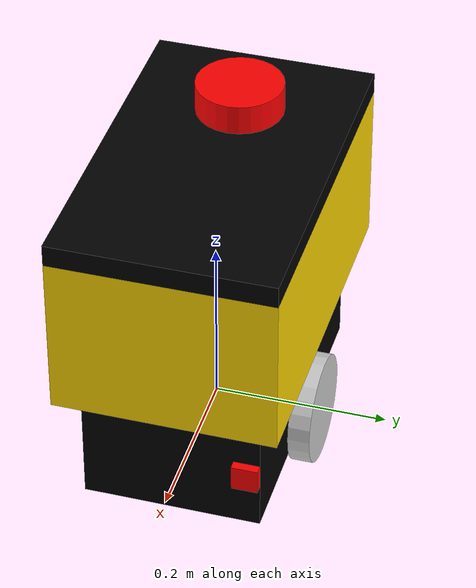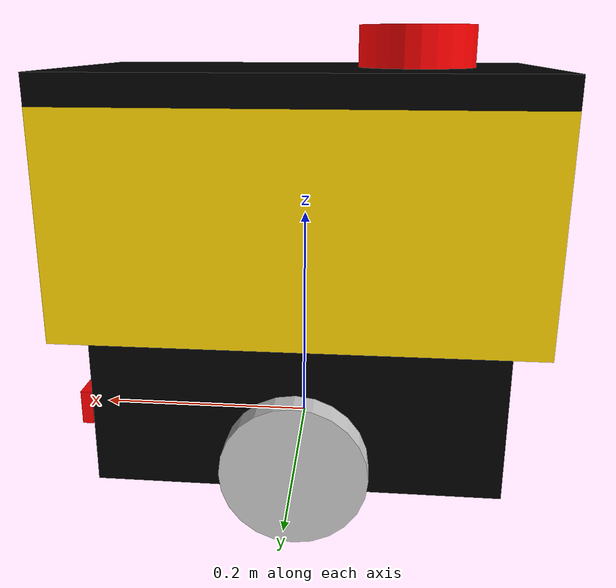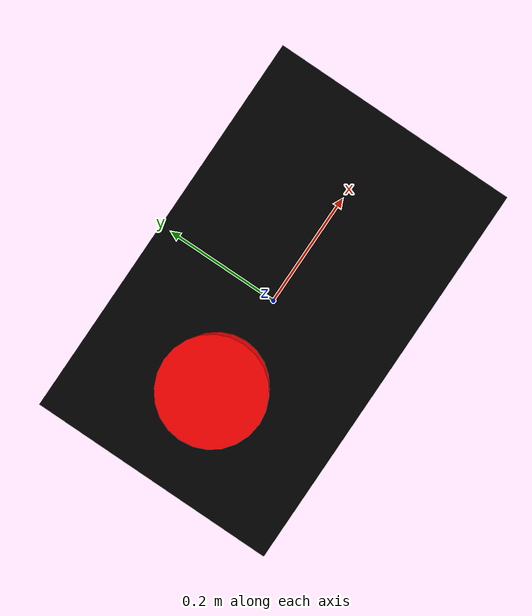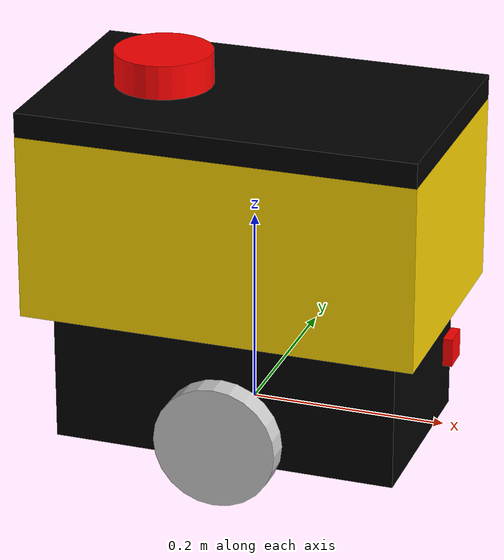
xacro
<?xml version="1.0"?>
<robot xmlns:xacro="http://www.ros.org/wiki/xacro"  name="robot">

    <xacro:arg name="use_ros2_control" default="true"/>
    <xacro:arg name="sim_mode" default="false"/>

    <xacro:include filename="robot_core.xacro" />

    <xacro:if value="$(arg use_ros2_control)">
        <xacro:include filename="ros2_control.xacro" />
    </xacro:if>
    <xacro:unless value="$(arg use_ros2_control)">
        <xacro:include filename="gazebo_control.xacro" />
    </xacro:unless>
    <xacro:include filename="lidar.xacro" />
    <xacro:include filename="camera.xacro" />

</robot>

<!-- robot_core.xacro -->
<robot xmlns:xacro="http://www.ros.org/wiki/xacro" >

    <xacro:include filename="inertial_macros.xacro"/>

    <xacro:property name="chassis_length" value="0.3556"/>
    <xacro:property name="chassis_width" value="0.2032"/>
    <xacro:property name="chassis_height" value="0.1397"/>
    <xacro:property name="chassis_mass" value="1.0"/>
    <xacro:property name="wheel_radius" value="0.0635"/>
    <xacro:property name="wheel_thickness" value="0.0254"/>
    <xacro:property name="wheel_mass" value="0.05"/>
    <xacro:property name="wheel_offset_x" value="0.1778"/>
    <xacro:property name="wheel_offset_y" value="0.1143"/>
    <xacro:property name="wheel_offset_z" value="0.026035"/>
    <xacro:property name="caster_wheel_radius" value="0.01"/>
    <xacro:property name="caster_wheel_mass" value="0.01"/>
    <xacro:property name="caster_wheel_offset_x" value="0.075"/>
    <xacro:property name="caster_wheel_offset_z" value="${wheel_offset_z - wheel_radius + caster_wheel_radius}"/>

    <xacro:property name="chassis_top_length" value="0.4064"/>
    <xacro:property name="chassis_top_width" value="0.254"/>
    <xacro:property name="chassis_top_height" value="0.1905"/>
    <xacro:property name="chassis_top_mass" value="0.0"/>
    <xacro:property name="lid_thickness" value="0.0254"/>

    <material name="white">
        <color rgba="1 1 1 1" />
    </material>

    <material name="orange">
        <color rgba="1 0.3 0.1 1"/>
    </material>

    <material name="blue">
        <color rgba="0.2 0.2 1 1"/>
    </material>

    <material name="black">
        <color rgba="0 0 0 1"/>
    </material>

    <material name="red">
        <color rgba="1 0 0 1"/>
    </material>

    <material name="gray">
        <color rgba="0.8 0.8 0.8 1"/>
    </material>

    <material name="gold">
        <color rgba="1 0.84 0 1"/>
    </material>

    <!-- BASE LINK -->

    <link name="base_link">

    </link>

    <!-- BASE_FOOTPRINT LINK -->

    <joint name="base_footprint_joint" type="fixed">
        <parent link="base_link"/>
        <child link="base_footprint"/>
        <origin xyz="0 0 0" rpy="0 0 0"/>
    </joint>

    <link name="base_footprint">
    </link>

    <!-- CHASSIS LINK -->

    <joint name="chassis_joint" type="fixed">
        <parent link="base_link"/>
        <child link="chassis"/>
        <origin xyz="${-wheel_offset_x} 0 ${-wheel_offset_z}"/>
    </joint>

    <link name="chassis">
        <visual>
            <origin xyz="${chassis_length/2} 0 ${chassis_height/2}"/>
            <geometry>
                <box size="${chassis_length} ${chassis_width} ${chassis_height}"/>
            </geometry>
            <material name="black"/>
        </visual>
        <collision>
            <origin xyz="${chassis_length/2} 0 ${chassis_height/2}"/>
            <geometry>
                <box size="${chassis_length} ${chassis_width} ${chassis_height}"/>
            </geometry>
        </collision>
        <xacro:inertial_box mass="0.5" x="${chassis_length}" y="${chassis_width}" z="${chassis_height}">
            <origin xyz="${chassis_length/2} 0 ${chassis_height/2}" rpy="0 0 0"/>
        </xacro:inertial_box>
    </link>

    <gazebo reference="chassis">
        <material>Gazebo/Black</material>
    </gazebo>

    <!-- CHASSIS TOP LINK -->

    <joint name="chassis_top_joint" type="fixed">
        <origin xyz="${chassis_length/2} 0 ${chassis_height}" rpy="0 0 0" />
        <parent link="chassis"/>
        <child link="chassis_top"/>
    </joint>

    <link name="chassis_top">
        <visual>
            <origin xyz="0 0 ${chassis_top_height/2}"/>
            <geometry>
                <box size="${chassis_top_length} ${chassis_top_width} ${chassis_top_height}" />
            </geometry>
            <material name="gold" />
        </visual>
        <collision>
            <origin xyz="0 0 0" rpy="0 0 0" />
            <geometry>
                <box size="${chassis_top_length} ${chassis_top_width} ${chassis_top_height}" />
            </geometry>
        </collision>
    </link>

    <gazebo reference="chassis_top">
        <material>Gazebo/Gold</material>
    </gazebo>

    <!-- LID LINK -->

    <joint name="lid_joint" type="fixed">
        <origin xyz="0 0 ${chassis_top_height}" />
        <parent link="chassis_top"/>
        <child link="lid"/>
    </joint>

    <link name="lid">
        <visual>
            <origin xyz="0 0 ${lid_thickness/2}" />
            <geometry>
                <box size="${chassis_top_length} ${chassis_top_width} ${lid_thickness}" />
            </geometry>
            <material name="black" />
        </visual>
        <collision>
            <origin xyz="0 0 ${lid_thickness}" />
            <geometry>
                <box size="${chassis_top_length} ${chassis_top_width} ${lid_thickness}" />
            </geometry>
        </collision>
    </link>

    <gazebo reference="lid">
        <material>Gazebo/Black</material>
    </gazebo>

    <!-- LEFT WHEEL LINK -->

    <joint name="left_wheel_joint" type="continuous">
        <parent link="base_link"/>
        <child link="left_wheel"/>
        <origin xyz="0 ${wheel_offset_y} 0" rpy="-${pi/2} 0 0" />
        <axis xyz="0 0 1"/>
    </joint>

    <link name="left_wheel">
        <visual>
            <geometry>
                <cylinder radius="${wheel_radius}" length="${wheel_thickness}"/>
            </geometry>
            <material name="gray"/>
        </visual>
        <collision>
            <geometry>
                <sphere radius="${wheel_radius}"/>
            </geometry>
        </collision>
        <xacro:inertial_cylinder mass="${wheel_mass}" length="${wheel_thickness}" radius="${wheel_radius}">
            <origin xyz="0 0 0" rpy="0 0 0"/>
        </xacro:inertial_cylinder>
    </link>

    <gazebo reference="left_wheel">
        <material>Gazebo/Gray</material>
    </gazebo>

    <!-- RIGHT WHEEL LINK -->

    <joint name="right_wheel_joint" type="continuous">
        <parent link="base_link"/>
        <child link="right_wheel"/>
        <origin xyz="0 ${-wheel_offset_y} 0" rpy="${pi/2} 0 0" />
        <axis xyz="0 0 -1"/>
    </joint>

    <link name="right_wheel">
        <visual>
            <geometry>
                <cylinder radius="${wheel_radius}" length="${wheel_thickness}"/>
            </geometry>
            <material name="gray"/>
        </visual>
        <collision>
            <geometry>
                <sphere radius="${wheel_radius}"/>
            </geometry>
        </collision>
        <xacro:inertial_cylinder mass="${wheel_mass}" length="${wheel_thickness}" radius="${wheel_radius}">
            <origin xyz="0 0 0" rpy="0 0 0"/>
        </xacro:inertial_cylinder>
    </link>

    <gazebo reference="right_wheel">
        <material>Gazebo/Gray</material>
    </gazebo>

    <!-- BACK CASTER WHEEL LINK -->

    <joint name="caster_wheel_joint" type="fixed">
        <parent link="chassis"/>
        <child link="caster_wheel"/>
        <origin xyz="${caster_wheel_offset_x} 0 ${caster_wheel_offset_z}"/>
    </joint>

    <link name="caster_wheel">
        <visual>
            <geometry>
                <sphere radius="${caster_wheel_radius}"/>
            </geometry>
            <material name="white"/>
        </visual>
        <collision>
            <geometry>
                <sphere radius="${caster_wheel_radius}"/>
            </geometry>
        </collision>
        <xacro:inertial_sphere mass="${caster_wheel_mass}" radius="${caster_wheel_radius}">
            <origin xyz="0 0 0" rpy="0 0 0"/>
        </xacro:inertial_sphere>
    </link>

    <gazebo reference="caster_wheel">
        <material>Gazebo/White</material>
        <mu1 value="0.001"/>
        <mu2 value="0.001"/>
    </gazebo>

</robot>

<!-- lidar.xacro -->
<robot xmlns:xacro="http://www.ros.org/wiki/xacro">

    <joint name="laser_joint" type="fixed">
        <parent link="lid"/>
        <child link="laser_frame"/>
        <!-- Change origin in a minute -->
        <origin xyz="-0.09525 0 0.04" rpy="0 0 3.1415"/>
    </joint>

    <link name="laser_frame">
        <visual>
            <geometry>
                <cylinder radius="0.05" length="0.04"/>
            </geometry>
            <material name="red"/>
        </visual>
        <collision>
            <geometry>
                <cylinder radius="0.05" length="0.04"/>
            </geometry>
        </collision>
        <xacro:inertial_cylinder mass="0.1" length="0.04" radius="0.05">
            <origin xyz="0 0 0" rpy="0 0 0"/>
        </xacro:inertial_cylinder>
    </link>

    <gazebo reference="laser_frame">
        <material>Gazebo/Red</material>

        <sensor name="laser" type="ray">
            <pose> 0 0 0 0 0 0 </pose>
            <visualize>false</visualize>
            <update_rate>10</update_rate>
            <ray>
                <scan>
                    <horizontal>
                        <samples>360</samples>
                        <min_angle>-3.14</min_angle>
                        <max_angle>3.14</max_angle>
                    </horizontal>
                </scan>
                <range>
                    <min>0.3</min>
                    <max>12</max>
                </range>
            </ray>
            <plugin name="laser_controller" filename="libgazebo_ros_ray_sensor.so">
                <ros>
                    <!-- Data Published Here to this topic -->
                    <argument>~/out:=scan</argument>
                </ros>
                <output_type>sensor_msgs/LaserScan</output_type>
                <frame_name>laser_frame</frame_name>
            </plugin>
        </sensor>
    </gazebo>

</robot>

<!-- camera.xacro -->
<robot xmlns:xacro="http://www.ros.org/wiki/xacro" >

    <joint name="camera_joint" type="fixed">
        <parent link="chassis"/>
        <child link="camera_link"/>
        <origin xyz="0.361 0.0866 0.06985" rpy="0 0 0"/>
    </joint>

    <link name="camera_link">
        <visual>
            <geometry>
                <box size="0.010 0.03 0.03"/>
            </geometry>
            <material name="red"/>
        </visual>
    </link>

    <joint name="camera_optical_joint" type="fixed">
        <parent link="camera_link"/>
        <child link="camera_link_optical"/>
        <origin xyz="0 0 0" rpy="${-pi/2} 0 ${-pi/2}"/>
    </joint>

    <link name="camera_link_optical"></link>

    <gazebo reference="camera_link">
        <material>Gazebo/Red</material>

        <sensor name="camera" type="camera">
            <pose> 0 0 0 0 0 0 </pose>
            <visualize>true</visualize>
            <update_rate>10</update_rate>
            <camera>
                <horizontal_fov>1.089</horizontal_fov>
                <image>
                    <format>R8G8B8</format>
                    <width>640</width>
                    <height>480</height>
                </image>
                <clip>
                    <near>0.05</near>
                    <far>8.0</far>
                </clip>
            </camera>
            <plugin name="camera_controller" filename="libgazebo_ros_camera.so">
                <frame_name>camera_link_optical</frame_name>
            </plugin>
        </sensor>
    </gazebo>

</robot>
